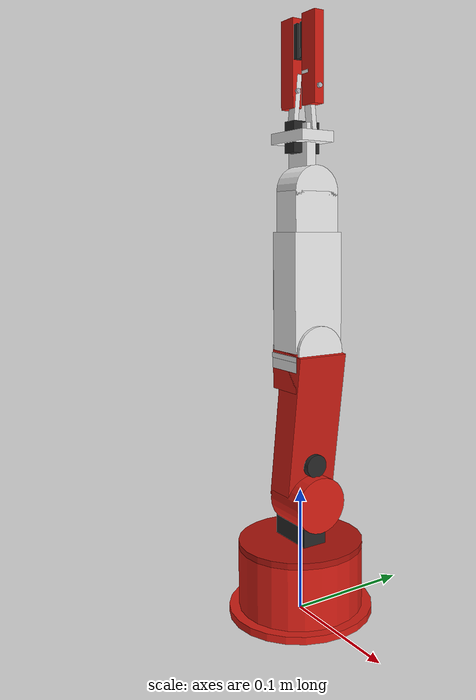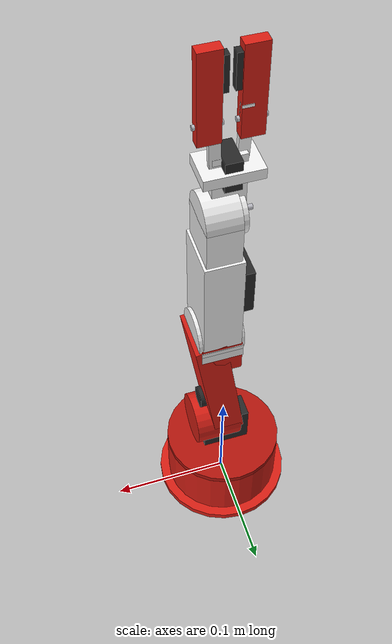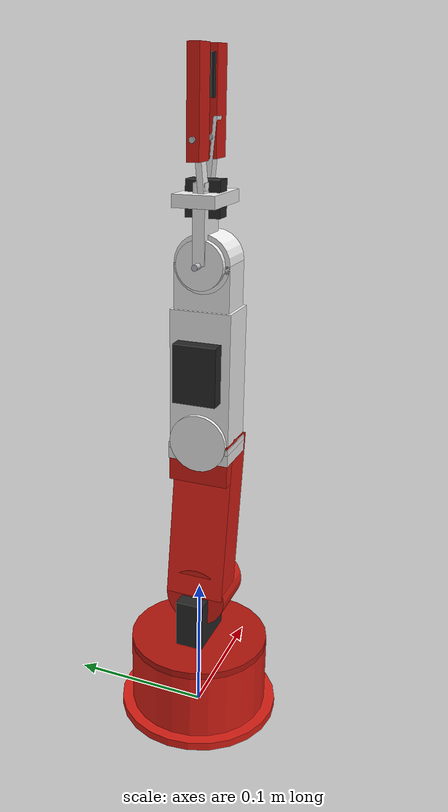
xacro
<?xml version="1.0"?>
<robot xmlns:xacro="http://www.ros.org/wiki/xacro" name="robotic_arm_5dof">
    <xacro:arg name="initial_positions_file" default="initial_positions.yaml" />

    <!-- Import robotic_arm_5dof urdf file -->
    <xacro:include filename="$(find robotic_arm_description_test1)/urdf/ros2_Robo_Arm_Robus.urdf" />

    <!-- Import control_xacro -->
    <xacro:include filename="robotic_arm_5dof.ros2_control.xacro" />

    <xacro:robotic_arm_5dof_ros2_control name="FakeSystem" initial_positions_file="$(arg initial_positions_file)"/>

</robot>

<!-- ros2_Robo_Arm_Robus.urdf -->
<robot name="robotic_arm_5dof">

  <!-- MATERIALS & COLOR PALETTE                  -->
  <material name="red_plastic">
    <color rgba="0.85 0.12 0.08 1.0"/>
  </material>
  <material name="dark_red_base">
    <color rgba="0.70 0.08 0.05 1.0"/>
  </material>
  <material name="white_plastic">
    <color rgba="0.95 0.95 0.95 1.0"/>
  </material>
  <material name="servo_black">
    <color rgba="0.15 0.15 0.15 1.0"/>
  </material>
  <material name="stripes_white">
    <color rgba="0.92 0.92 0.92 1.0"/>
  </material>
  <material name="metallic_screw">
    <color rgba="0.75 0.75 0.78 1.0"/>
  </material>

  <!-- 1. BASE ASSEMBLY                           -->
  <link name="base_link">
    <visual>
      <origin xyz="0 0 0.0275" rpy="0 0 0"/>
      <geometry>
        <cylinder radius="0.05" length="0.055"/>
      </geometry>
      <material name="red_plastic"/>
    </visual>
    <visual>
      <origin xyz="0 0 0.003" rpy="0 0 0"/>
      <geometry>
        <cylinder radius="0.058" length="0.006"/>
      </geometry>
      <material name="red_plastic"/>
    </visual>
    <collision>
      <origin xyz="0 0 0.0275" rpy="0 0 0"/>
      <geometry>
        <cylinder radius="0.058" length="0.055"/>
      </geometry>
    </collision>
    <inertial>
      <origin xyz="0 0 0.0275" rpy="0 0 0"/>
      <mass value="0.5"/>
      <inertia ixx="0.000438" ixy="0" ixz="0" iyy="0.000438" iyz="0" izz="0.000625"/>
    </inertial>
  </link>

  <!-- Giunto 1: Rotazione Base -->
  <joint name="joint_1_base_rotation" type="revolute">
    <parent link="base_link"/>
    <child link="rotating_base"/>
    <origin xyz="0 0 0.055" rpy="0 0 0"/>
    <axis xyz="0 0 1"/>
    <limit lower="-1.5708" upper="1.5708" effort="10.0" velocity="1.0"/>
  </joint>

  <link name="rotating_base">
    <visual>
      <origin xyz="0 0 0.0025" rpy="0 0 0"/>
      <geometry>
        <cylinder radius="0.05" length="0.005"/>
      </geometry>
      <material name="dark_red_base"/>
    </visual>
    <visual>
      <origin xyz="0 0 0.02" rpy="0 0 0"/>
      <geometry>
        <box size="0.04 0.02 0.04"/>
      </geometry>
      <material name="servo_black"/>
    </visual>
    <collision>
      <origin xyz="0 0 0.02" rpy="0 0 0"/>
      <geometry>
        <cylinder radius="0.05" length="0.04"/>
      </geometry>
    </collision>
    <inertial>
      <origin xyz="0 0 0.02" rpy="0 0 0"/>
      <mass value="0.15"/>
      <inertia ixx="0.0001" ixy="0" ixz="0" iyy="0.0001" iyz="0" izz="0.00015"/>
    </inertial>
  </link>

  <!-- 2. SPALLA                                  -->
  <joint name="joint_2_shoulder" type="revolute">
    <parent link="rotating_base"/>
    <child link="shoulder_link"/>
    <origin xyz="0.01 0 0.04" rpy="0 0 0"/>
    <axis xyz="1 0 0"/>
    <limit lower="-1.5708" upper="1.5708" effort="10.0" velocity="1.0"/>
  </joint>

  <link name="shoulder_link">
    <visual>
      <origin xyz="0 0 0.06" rpy="0 0.15 0"/>
      <geometry>
        <box size="0.025 0.042 0.12"/>
      </geometry>
      <material name="red_plastic"/>
    </visual>
    <visual>
      <origin xyz="0 0 0" rpy="0 1.5708 0"/>
      <geometry>
        <cylinder radius="0.022" length="0.038"/>
      </geometry>
      <material name="red_plastic"/>
    </visual>
    <visual>
      <origin xyz="0 0 0.03" rpy="0 1.5708 0"/>
      <geometry>
        <cylinder radius="0.009" length="0.026"/>
      </geometry>
      <material name="servo_black"/>
    </visual>
    <visual>
      <origin xyz="0 0 0.105" rpy="0 0 0"/>
      <geometry>
        <box size="0.032 0.042 0.03"/>
      </geometry>
      <material name="red_plastic"/>
    </visual>
    <visual>
      <origin xyz="0 0 0.11" rpy="0 0 0"/>
      <geometry>
        <box size="0.033 0.043 0.008"/>
      </geometry>
      <material name="stripes_white"/>
    </visual>
    <visual>
      <origin xyz="0 0 0.116" rpy="0 0 0"/>
      <geometry>
        <box size="0.033 0.043 0.004"/>
      </geometry>
      <material name="stripes_white"/>
    </visual>
    <collision>
      <origin xyz="0 0 0.06" rpy="0 0 0"/>
      <geometry>
        <box size="0.035 0.045 0.12"/>
      </geometry>
    </collision>
    <inertial>
      <origin xyz="0 0 0.06" rpy="0 0 0"/>
      <mass value="0.22"/>
      <inertia ixx="0.00028" ixy="0" ixz="0" iyy="0.00025" iyz="0" izz="0.00004"/>
    </inertial>
  </link>

  <!-- 3. AVAMBRACCIO BIANCO                      -->
  <joint name="joint_3_forearm" type="revolute">
    <parent link="shoulder_link"/>
    <child link="forearm_link"/>
    <origin xyz="0 0 0.12" rpy="0 0 0"/>
    <axis xyz="1 0 0"/>
    <limit lower="0" upper="3.1415" effort="10.0" velocity="1.0"/>
  </joint>

  <link name="forearm_link">
    <visual>
      <origin xyz="0 0 0.045" rpy="0 0 0"/>
      <geometry>
        <box size="0.03 0.042 0.09"/>
      </geometry>
      <material name="white_plastic"/>
    </visual>
    <visual>
      <origin xyz="0 0 0" rpy="0 1.5708 0"/>
      <geometry>
        <cylinder radius="0.02" length="0.036"/>
      </geometry>
      <material name="white_plastic"/>
    </visual>
    <visual>
      <origin xyz="-0.015 0 0.05" rpy="0 0 0"/>
      <geometry>
        <box size="0.02 0.03 0.04"/>
      </geometry>
      <material name="servo_black"/>
    </visual>
    <collision>
      <origin xyz="0 0 0.045" rpy="0 0 0"/>
      <geometry>
        <box size="0.032 0.044 0.09"/>
      </geometry>
    </collision>
    <inertial>
      <origin xyz="0 0 0.045" rpy="0 0 0"/>
      <mass value="0.16"/>
      <inertia ixx="0.00013" ixy="0" ixz="0" iyy="0.00011" iyz="0" izz="0.00003"/>
    </inertial>
  </link>

  <!-- 4. POLSO ARROTONDATO                       -->
  <joint name="joint_4_wrist" type="revolute">
    <parent link="forearm_link"/>
    <child link="wrist_link"/>
    <origin xyz="0 0 0.09" rpy="0 0 0"/>
    <axis xyz="0 0 1"/>
    <limit lower="-1.5708" upper="1.5708" effort="10.0" velocity="1.0"/>
  </joint>

  <link name="wrist_link">
    <!-- Base rettangolare inferiore -->
    <visual>
      <origin xyz="0 0 0.015" rpy="0 0 0"/>
      <geometry>
        <box size="0.026 0.038 0.03"/>
      </geometry>
      <material name="white_plastic"/>
    </visual>

    <!-- Testa arrotondata / cupola del perno -->
    <visual>
      <origin xyz="0 0 0.03" rpy="0 1.5708 0"/>
      <geometry>
        <cylinder radius="0.019" length="0.026"/>
      </geometry>
      <material name="white_plastic"/>
    </visual>

    <!-- Servomotore MG90S polso -->
    <visual>
      <origin xyz="0 0.004 0.022" rpy="0 0 0"/>
      <geometry>
        <box size="0.023 0.012 0.023"/>
      </geometry>
      <material name="servo_black"/>
    </visual>

    <collision>
      <origin xyz="0 0 0.022" rpy="0 0 0"/>
      <geometry>
        <cylinder radius="0.02" length="0.044"/>
      </geometry>
    </collision>

    <inertial>
      <origin xyz="0 0 0.022" rpy="0 0 0"/>
      <mass value="0.08"/>
      <inertia ixx="0.000014" ixy="0" ixz="0" iyy="0.000012" iyz="0" izz="0.000006"/>
    </inertial>
  </link>

  <!-- 5. MANO / PINZA RUOTATA DI 90°             -->
  <joint name="joint_5_hand" type="revolute">
    <parent link="wrist_link"/>
    <child link="hand_link"/>
    <origin xyz="-0.015 0 0.03" rpy="0 0 0"/>
    <axis xyz="1 0 0"/>
    <limit lower="-1.5708" upper="1.5708" effort="10.0" velocity="1.0"/>
  </joint>

  <link name="hand_link">
    <!-- Staffa laterale di accoppiamento al perno -->
    <visual>
      <origin xyz="0 0 0" rpy="0 1.5708 0"/>
      <geometry>
        <cylinder radius="0.016" length="0.005"/>
      </geometry>
      <material name="white_plastic"/>
    </visual>

    <!-- Braccio verticale di supporto pinza -->
    <visual>
      <origin xyz="0.008 0 0.025" rpy="0 0 0"/>
      <geometry>
        <box size="0.024 0.008 0.05"/>
      </geometry>
      <material name="white_plastic"/>
    </visual>

    <!-- Piastra supporto servomotore pinza (ruotata di 90°) -->
    <visual>
      <origin xyz="0.008 0 0.04" rpy="0 0 0"/>
      <geometry>
        <box size="0.042 0.028 0.008"/>
      </geometry>
      <material name="white_plastic"/>
    </visual>

    <!-- Micro Servo pinza orientato -->
    <visual>
      <origin xyz="0.008 0 0.04" rpy="0 0 1.5708"/>
      <geometry>
        <box size="0.023 0.012 0.023"/>
      </geometry>
      <material name="servo_black"/>
    </visual>

    <!-- Leveraggi bianchi (apertura lungo asse X) -->
    <visual>
      <origin xyz="0.018 0 0.065" rpy="0.1 0 0"/>
      <geometry>
        <box size="0.008 0.004 0.045"/>
      </geometry>
      <material name="white_plastic"/>
    </visual>
    <visual>
      <origin xyz="-0.002 0 0.065" rpy="-0.1 0 0"/>
      <geometry>
        <box size="0.008 0.004 0.045"/>
      </geometry>
      <material name="white_plastic"/>
    </visual>

    <!-- Chela 1 Rossa (ruotata di 90°) -->
    <visual>
      <origin xyz="0.022 0 0.095" rpy="0 0 0"/>
      <geometry>
        <box size="0.016 0.008 0.065"/>
      </geometry>
      <material name="red_plastic"/>
    </visual>

    <!-- Chela 2 Rossa (ruotata di 90°) -->
    <visual>
      <origin xyz="-0.006 0 0.095" rpy="0 0 0"/>
      <geometry>
        <box size="0.016 0.008 0.065"/>
      </geometry>
      <material name="red_plastic"/>
    </visual>

    <!-- Gommini antiscivolo interni -->
    <visual>
      <origin xyz="0.012 0 0.11" rpy="0 0 0"/>
      <geometry>
        <box size="0.004 0.006 0.025"/>
      </geometry>
      <material name="servo_black"/>
    </visual>
    <visual>
      <origin xyz="0.004 0 0.11" rpy="0 0 0"/>
      <geometry>
        <box size="0.004 0.006 0.025"/>
      </geometry>
      <material name="servo_black"/>
    </visual>

    <!-- Viti e perni metallici -->
    <visual>
      <origin xyz="0 0 0" rpy="0 1.5708 0"/>
      <geometry>
        <cylinder radius="0.002" length="0.02"/>
      </geometry>
      <material name="metallic_screw"/>
    </visual>
    <visual>
      <origin xyz="0.022 0 0.075" rpy="0 1.5708 0"/>
      <geometry>
        <cylinder radius="0.0018" length="0.02"/>
      </geometry>
      <material name="metallic_screw"/>
    </visual>
    <visual>
      <origin xyz="-0.006 0 0.075" rpy="0 1.5708 0"/>
      <geometry>
        <cylinder radius="0.0018" length="0.02"/>
      </geometry>
      <material name="metallic_screw"/>
    </visual>

    <!-- Collisione centrata sulla nuova sagoma ruotata -->
    <collision>
      <origin xyz="0.008 0 0.075" rpy="0 0 0"/>
      <geometry>
        <box size="0.045 0.035 0.10"/>
      </geometry>
    </collision>

    <inertial>
      <origin xyz="0.008 0 0.06" rpy="0 0 0"/>
      <mass value="0.10"/>
      <inertia ixx="0.00010" ixy="0" ixz="0" iyy="0.00012" iyz="0" izz="0.00002"/>
    </inertial>
  </link>

  <!-- 6. TOOL CENTER POINT (TCP / PUNTA PINZA)   -->
  <link name="tool0"/>

  <joint name="joint_tool0" type="fixed">
    <parent link="hand_link"/>
    <child link="tool0"/>
    <!-- Offset reale dal perno alla punta delle chele -->
    <origin xyz="0.008 0 0.11" rpy="0 0 0"/>
  </joint>

</robot>
